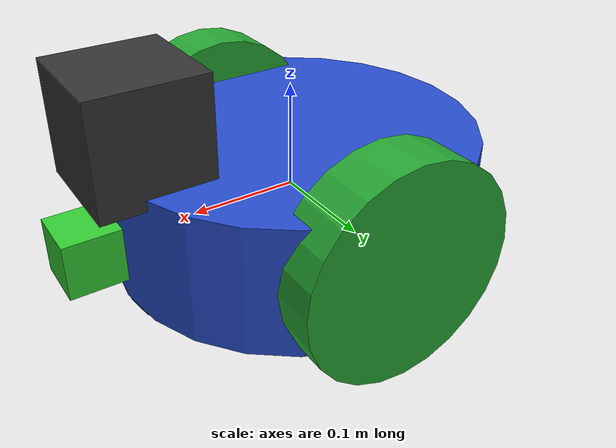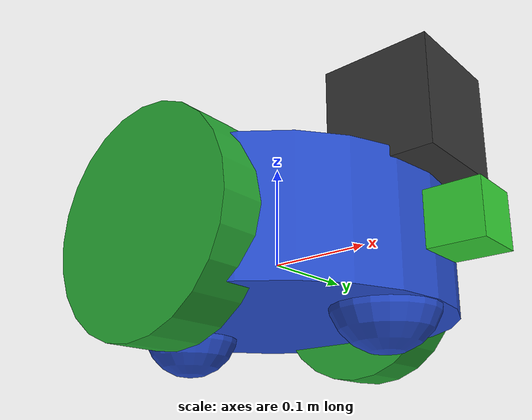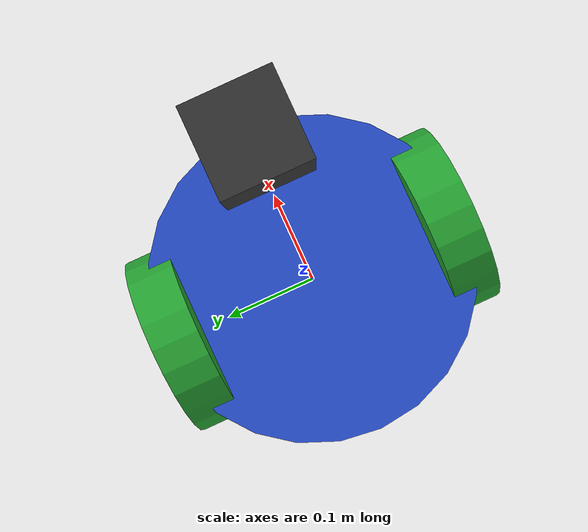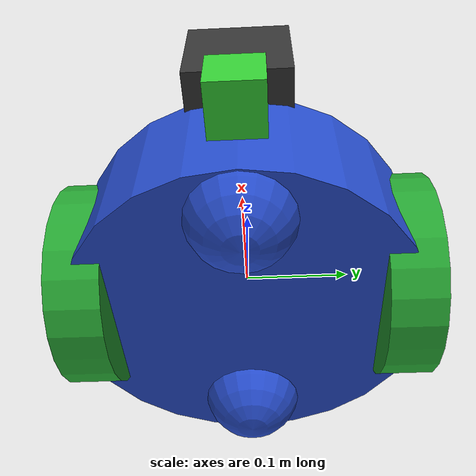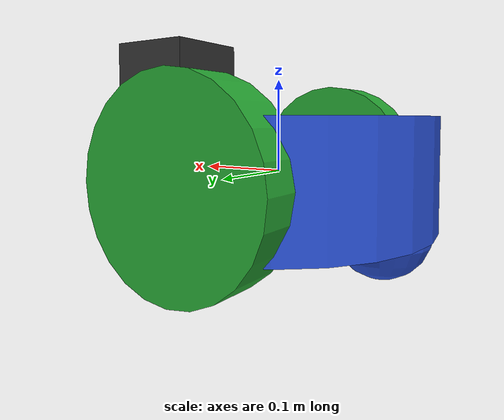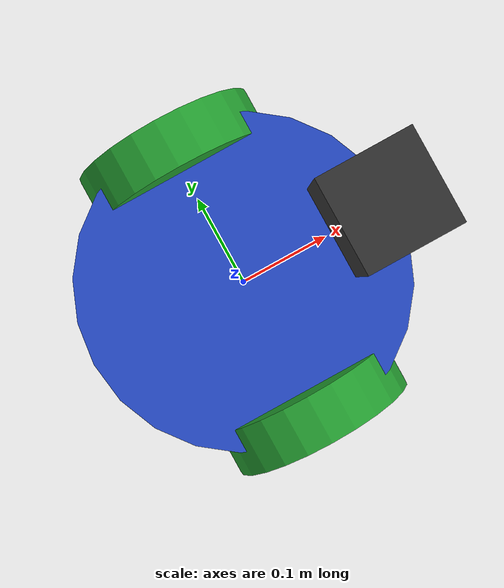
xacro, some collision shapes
<?xml version='1.0'?>

<robot name="my_robot" xmlns:xacro="http://www.ros.org/wiki/xacro">
<xacro:include filename="$(find my_robot)/urdf/my_robot.gazebo" />

  <link name="robot_footprint"></link>

  <joint name="robot_footprint_joint" type="fixed">
    <origin xyz="0 0 0" rpy="0 0 0" />
    <parent link="robot_footprint"/>
    <child link="chassis" />
  </joint>

  <link name="chassis">
    <pose>0 0 0.1 0 0 0</pose>

    <inertial>
      <mass value="15.0"/>
      <origin xyz="0.0 0 0" rpy=" 0 0 0"/>
      <inertia
          ixx="0.15" ixy="0" ixz="0"
          iyy="0.15" iyz="0"
          izz="0.2"
      />
    </inertial>

    <collision name="collision">
      <origin xyz="0 0 0" rpy=" 0 0 0"/>
      <geometry>
        <cylinder radius="0.17" length="0.12"/>
      </geometry>
    </collision>

    <visual name="chassis_visual">
      <origin xyz="0 0 0" rpy=" 0 0 0"/>
      <geometry>
        <cylinder radius="0.17" length="0.12"/>
      </geometry>

    </visual>

  <collision name='back_caster_collision'>
      <origin xyz="-0.12 0 -0.05" rpy=" 0 0 0"/>
      <geometry>
        <sphere radius="0.0499"/>
      </geometry>
    </collision>

    <visual name='back_caster_visual'>
      <origin xyz="-0.12 0 -0.05" rpy=" 0 0 0"/>
      <geometry>
        <sphere radius="0.05"/>
      </geometry>
    </visual>

    <collision name='front_caster_collision'>
      <origin xyz="0.12 0 -0.05" rpy=" 0 0 0"/>
      <geometry>
        <sphere radius="0.0499"/>
      </geometry>
    </collision>

    <visual name='front_caster_visual'>
      <origin xyz="0.12 0 -0.05" rpy=" 0 0 0"/>
      <geometry>
        <sphere radius="0.05"/>
      </geometry>
    </visual>

  </link>

   <!-- Camera Link -->
  <link name="camera">
    <inertial>
      <mass value="0.1"/>
      <origin xyz="0 0 0" rpy="0 0 0"/>
      <inertia
          ixx="1e-6" ixy="0" ixz="0"
          iyy="1e-6" iyz="0"
          izz="1e-6"
      />
    </inertial>
    <collision>
      <origin xyz="0 0 0" rpy="0 0 0"/>
      <geometry>
        <box size="0.05 0.05 0.05"/>
      </geometry>
    </collision>
    <visual>
      <origin xyz="0 0 0" rpy="0 0 0"/>
      <geometry>
        <box size="0.05 0.05 0.05"/>
      </geometry>
      <material name="camera_color">
        <color rgba="0.2 0.8 0.2 1.0"/> <!-- Green color -->
      </material>
    </visual>
  </link>

  <!-- Camera Joint -->
  <joint name="camera_joint" type="fixed">
    <origin xyz="0.2 0 0" rpy="0 0 0"/>
    <parent link="chassis"/>
    <child link="camera"/>
    <axis xyz="0 1 0"/>
  </joint>
 <!-- optical camera additions -->
  <joint name="camera_optical_joint" type="fixed">
    <origin xyz="0 0 0" rpy="-1.5707 0 -1.5707"/>
    <parent link="camera"/>
    <child link="camera_link_optical"/>
  </joint>

  <link name="camera_link_optical">
  </link>

   <!-- Hokuyo Link -->
  <link name="hokuyo">
    <inertial>
      <mass value="1e-5"/>
      <origin xyz="0 0 0" rpy="0 0 0"/>
      <inertia
          ixx="1e-6" ixy="0" ixz="0"
          iyy="1e-6" iyz="0"
          izz="1e-6"
      />
    </inertial>
    <collision>
      <origin xyz="0 0 0" rpy="0 0 0"/>
      <geometry>
        <box size="0.1 0.1 0.1"/>
      </geometry>
    </collision>
    <visual>
      <origin xyz="0 0 0" rpy="0 0 0"/>
      <geometry>
        <mesh filename="package://my_robot/meshes/hokuyo.dae"/>
      </geometry>
      <material name="hokuyo_color">
        <color rgba="0.2 0.2 0.2 1.0"/> <!-- Dark Gray -->
      </material>
    </visual>
  </link>

  <!-- Hokuyo Joint -->
  <joint name="hokuyo_joint" type="fixed">
    <origin xyz="0.15 0 0.1" rpy="0 0 0"/>
    <parent link="chassis"/>
    <child link="hokuyo"/>
    <axis xyz="0 1 0"/>
  </joint>

  <!-- Left Wheel -->
  <link name="left_wheel">
    <inertial>
      <mass value="5"/>
      <origin xyz="0 0 0" rpy="0 1.5707 1.5707"/>
      <inertia
         ixx="0.1" ixy="0" ixz="0" iyy="0.1" iyz="0" izz="0.1"
      />
    </inertial>
    <collision>
      <origin xyz="0 0 0" rpy="0 1.5707 1.5707"/>
      <geometry>
        <cylinder radius="0.1" length="0.05"/>
      </geometry>
    </collision>
    <visual>
      <origin xyz="0 0 0" rpy="0 1.5707 1.5707"/>
      <geometry>
        <cylinder radius="0.1" length="0.05"/>
      </geometry>

    </visual>
  </link>

  <joint type="continuous" name="left_wheel_joint">
    <origin xyz="0 0.15 0" rpy="0 0 0"/> <!-- Pinned to chassis edge -->
    <child link="left_wheel"/>
    <parent link="chassis"/>
    <axis xyz="0 1 0" rpy="0 0 0"/>
    <limit effort="10000" velocity="1000"/>
    <dynamics damping="1.0" friction="1.0"/>
  </joint>

  <!-- Right Wheel -->
  <link name="right_wheel">
    <inertial>
      <mass value="5"/>
      <origin xyz="0 0 0" rpy="0 1.5707 1.5707"/>
      <inertia
         ixx="0.1" ixy="0" ixz="0" iyy="0.1" iyz="0" izz="0.1"
      />
    </inertial>
    <collision>
      <origin xyz="0 0 0" rpy="0 1.5707 1.5707"/>
      <geometry>
        <cylinder radius="0.1" length="0.05"/>
      </geometry>
    </collision>
    <visual>
      <origin xyz="0 0 0" rpy="0 1.5707 1.5707"/>
      <geometry>
        <cylinder radius="0.1" length="0.05"/>
      </geometry>

    </visual>
  </link>

  <joint type="continuous" name="right_wheel_joint">
    <origin xyz="0 -0.15 0" rpy="0 0 0"/> <!-- Pinned to chassis edge -->
    <child link="right_wheel"/>
    <parent link="chassis"/>
    <axis xyz="0 1 0" rpy="0 0 0"/>
    <limit effort="10000" velocity="1000"/>
    <dynamics damping="1.0" friction="1.0"/>
  </joint>

  <gazebo reference="chassis">

	<material>Gazebo/Blue</material>

  </gazebo>

  <gazebo reference="camera">

	<material>Gazebo/Red</material>

  </gazebo>

  <gazebo reference="left_wheel">

	<material>Gazebo/Green</material>

   </gazebo>

   <gazebo reference="right_wheel">

	<material>Gazebo/Green</material>

   </gazebo>

   <gazebo reference="back_caster_visual">

	<material>Gazebo/Yellow</material>

   </gazebo>
     <gazebo reference="front_caster_visual">

	<material>Gazebo/Yellow</material>

   </gazebo>
</robot>
